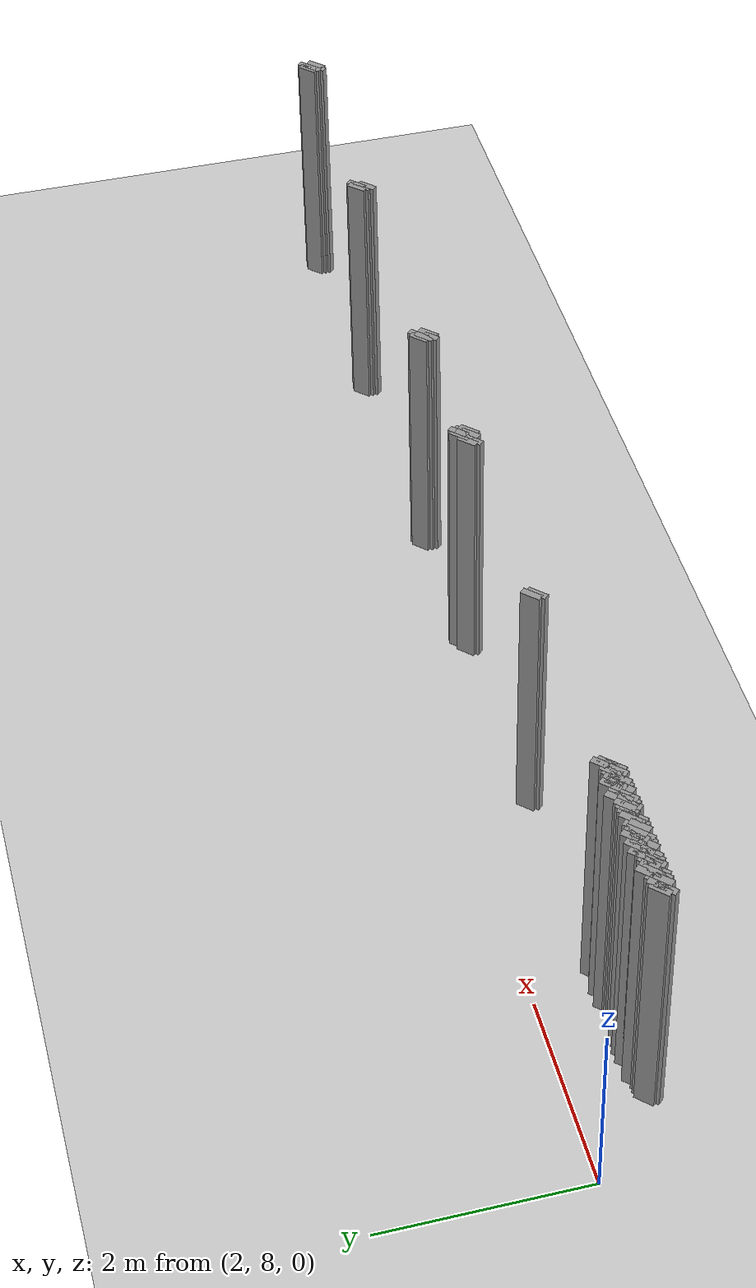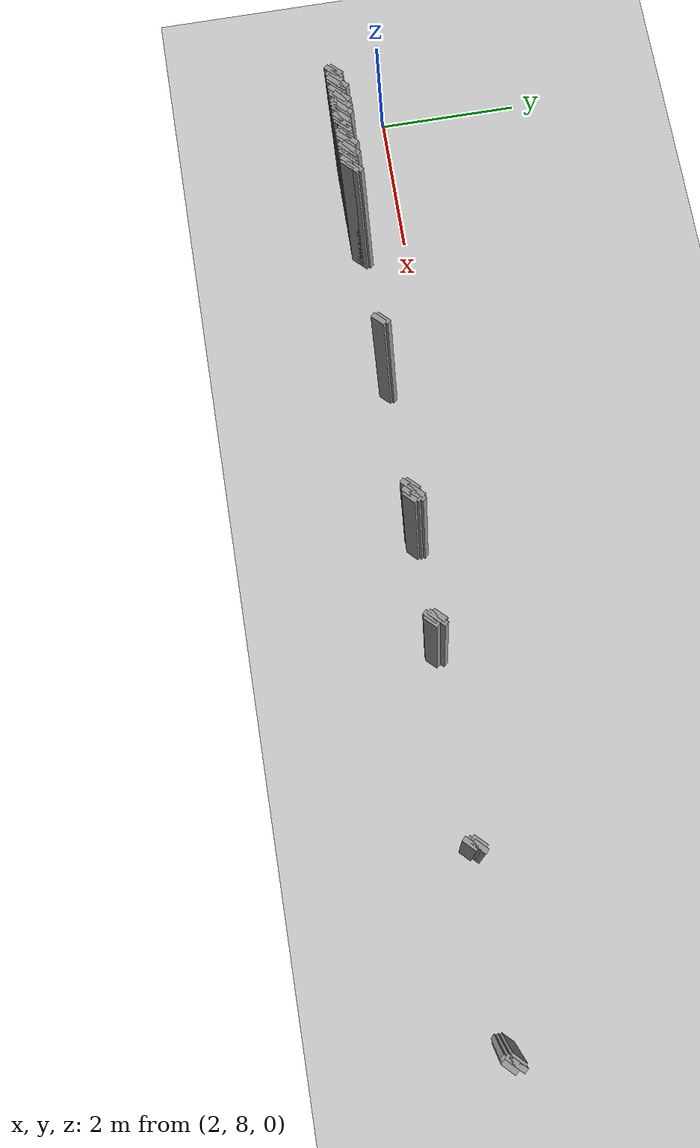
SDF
<sdf version="1.5">
 <world name="default">
  <include><uri>model://ground_plane</uri></include>
  <include><uri>model://sun</uri></include>
  <model name="grey_wall_1478">
   <static>1</static>
   <link name="link">
    <pose>8.65 7.45  1.4 0 0 -0.785398163397</pose>
    <collision name="collision"><geometry><box><size>0.0707106781187 .2  2.8</size></box></geometry></collision>
    <visual name="visual">
     <cast_shadows>0</cast_shadows>
     <geometry><box><size>0.0707106781187 .2  2.8</size></box></geometry>
     <material>
      <script>
       <uri>model://grey_wall/materials/scripts</uri>
       <uri>model://grey_wall/materials/textures</uri>
       <name>vrc/grey_wall</name>
      </script>
     </material>
    </visual>
   </link>
  </model>
  <model name="grey_wall_1479">
   <static>1</static>
   <link name="link">
    <pose>8.7 7.45  1.4 0 0 -0.785398163397</pose>
    <collision name="collision"><geometry><box><size>0.0707106781187 .2  2.8</size></box></geometry></collision>
    <visual name="visual">
     <cast_shadows>0</cast_shadows>
     <geometry><box><size>0.0707106781187 .2  2.8</size></box></geometry>
     <material>
      <script>
       <uri>model://grey_wall/materials/scripts</uri>
       <uri>model://grey_wall/materials/textures</uri>
       <name>vrc/grey_wall</name>
      </script>
     </material>
    </visual>
   </link>
  </model>
  <model name="grey_wall_1480">
   <static>1</static>
   <link name="link">
    <pose>10.2 7.45  1.4 0 0 -0.785398163397</pose>
    <collision name="collision"><geometry><box><size>0.0707106781187 .2  2.8</size></box></geometry></collision>
    <visual name="visual">
     <cast_shadows>0</cast_shadows>
     <geometry><box><size>0.0707106781187 .2  2.8</size></box></geometry>
     <material>
      <script>
       <uri>model://grey_wall/materials/scripts</uri>
       <uri>model://grey_wall/materials/textures</uri>
       <name>vrc/grey_wall</name>
      </script>
     </material>
    </visual>
   </link>
  </model>
  <model name="grey_wall_1481">
   <static>1</static>
   <link name="link">
    <pose>10.25 7.45  1.4 0 0 -0.785398163397</pose>
    <collision name="collision"><geometry><box><size>0.0707106781187 .2  2.8</size></box></geometry></collision>
    <visual name="visual">
     <cast_shadows>0</cast_shadows>
     <geometry><box><size>0.0707106781187 .2  2.8</size></box></geometry>
     <material>
      <script>
       <uri>model://grey_wall/materials/scripts</uri>
       <uri>model://grey_wall/materials/textures</uri>
       <name>vrc/grey_wall</name>
      </script>
     </material>
    </visual>
   </link>
  </model>
  <model name="grey_wall_1482">
   <static>1</static>
   <link name="link">
    <pose>12.85 7.45  1.4 0 0 -0.785398163397</pose>
    <collision name="collision"><geometry><box><size>0.0707106781187 .2  2.8</size></box></geometry></collision>
    <visual name="visual">
     <cast_shadows>0</cast_shadows>
     <geometry><box><size>0.0707106781187 .2  2.8</size></box></geometry>
     <material>
      <script>
       <uri>model://grey_wall/materials/scripts</uri>
       <uri>model://grey_wall/materials/textures</uri>
       <name>vrc/grey_wall</name>
      </script>
     </material>
    </visual>
   </link>
  </model>
  <model name="grey_wall_1483">
   <static>1</static>
   <link name="link">
    <pose>12.9 7.45  1.4 0 0 -0.785398163397</pose>
    <collision name="collision"><geometry><box><size>0.0707106781187 .2  2.8</size></box></geometry></collision>
    <visual name="visual">
     <cast_shadows>0</cast_shadows>
     <geometry><box><size>0.0707106781187 .2  2.8</size></box></geometry>
     <material>
      <script>
       <uri>model://grey_wall/materials/scripts</uri>
       <uri>model://grey_wall/materials/textures</uri>
       <name>vrc/grey_wall</name>
      </script>
     </material>
    </visual>
   </link>
  </model>
  <model name="grey_wall_1484">
   <static>1</static>
   <link name="link">
    <pose>15.2 7.45  1.4 0 0 -0.785398163397</pose>
    <collision name="collision"><geometry><box><size>0.0707106781187 .2  2.8</size></box></geometry></collision>
    <visual name="visual">
     <cast_shadows>0</cast_shadows>
     <geometry><box><size>0.0707106781187 .2  2.8</size></box></geometry>
     <material>
      <script>
       <uri>model://grey_wall/materials/scripts</uri>
       <uri>model://grey_wall/materials/textures</uri>
       <name>vrc/grey_wall</name>
      </script>
     </material>
    </visual>
   </link>
  </model>
  <model name="grey_wall_1485">
   <static>1</static>
   <link name="link">
    <pose>15.25 7.45  1.4 0 0 -0.785398163397</pose>
    <collision name="collision"><geometry><box><size>0.0707106781187 .2  2.8</size></box></geometry></collision>
    <visual name="visual">
     <cast_shadows>0</cast_shadows>
     <geometry><box><size>0.0707106781187 .2  2.8</size></box></geometry>
     <material>
      <script>
       <uri>model://grey_wall/materials/scripts</uri>
       <uri>model://grey_wall/materials/textures</uri>
       <name>vrc/grey_wall</name>
      </script>
     </material>
    </visual>
   </link>
  </model>
  <model name="grey_wall_1486">
   <static>1</static>
   <link name="link">
    <pose>2.95 7.4  1.4 0 0 -0.785398163397</pose>
    <collision name="collision"><geometry><box><size>0.0707106781187 .2  2.8</size></box></geometry></collision>
    <visual name="visual">
     <cast_shadows>0</cast_shadows>
     <geometry><box><size>0.0707106781187 .2  2.8</size></box></geometry>
     <material>
      <script>
       <uri>model://grey_wall/materials/scripts</uri>
       <uri>model://grey_wall/materials/textures</uri>
       <name>vrc/grey_wall</name>
      </script>
     </material>
    </visual>
   </link>
  </model>
  <model name="grey_wall_1487">
   <static>1</static>
   <link name="link">
    <pose>3.15 7.4  1.4 0 0 -0.785398163397</pose>
    <collision name="collision"><geometry><box><size>0.0707106781187 .2  2.8</size></box></geometry></collision>
    <visual name="visual">
     <cast_shadows>0</cast_shadows>
     <geometry><box><size>0.0707106781187 .2  2.8</size></box></geometry>
     <material>
      <script>
       <uri>model://grey_wall/materials/scripts</uri>
       <uri>model://grey_wall/materials/textures</uri>
       <name>vrc/grey_wall</name>
      </script>
     </material>
    </visual>
   </link>
  </model>
  <model name="grey_wall_1488">
   <static>1</static>
   <link name="link">
    <pose>3.25 7.4  1.4 0 0 -0.785398163397</pose>
    <collision name="collision"><geometry><box><size>0.0707106781187 .2  2.8</size></box></geometry></collision>
    <visual name="visual">
     <cast_shadows>0</cast_shadows>
     <geometry><box><size>0.0707106781187 .2  2.8</size></box></geometry>
     <material>
      <script>
       <uri>model://grey_wall/materials/scripts</uri>
       <uri>model://grey_wall/materials/textures</uri>
       <name>vrc/grey_wall</name>
      </script>
     </material>
    </visual>
   </link>
  </model>
  <model name="grey_wall_1489">
   <static>1</static>
   <link name="link">
    <pose>3.35 7.4  1.4 0 0 -0.785398163397</pose>
    <collision name="collision"><geometry><box><size>0.0707106781187 .2  2.8</size></box></geometry></collision>
    <visual name="visual">
     <cast_shadows>0</cast_shadows>
     <geometry><box><size>0.0707106781187 .2  2.8</size></box></geometry>
     <material>
      <script>
       <uri>model://grey_wall/materials/scripts</uri>
       <uri>model://grey_wall/materials/textures</uri>
       <name>vrc/grey_wall</name>
      </script>
     </material>
    </visual>
   </link>
  </model>
  <model name="grey_wall_1490">
   <static>1</static>
   <link name="link">
    <pose>3.8 7.4  1.4 0 0 -0.785398163397</pose>
    <collision name="collision"><geometry><box><size>0.0707106781187 .2  2.8</size></box></geometry></collision>
    <visual name="visual">
     <cast_shadows>0</cast_shadows>
     <geometry><box><size>0.0707106781187 .2  2.8</size></box></geometry>
     <material>
      <script>
       <uri>model://grey_wall/materials/scripts</uri>
       <uri>model://grey_wall/materials/textures</uri>
       <name>vrc/grey_wall</name>
      </script>
     </material>
    </visual>
   </link>
  </model>
  <model name="grey_wall_1491">
   <static>1</static>
   <link name="link">
    <pose>3.95 7.4  1.4 0 0 -0.785398163397</pose>
    <collision name="collision"><geometry><box><size>0.0707106781187 .2  2.8</size></box></geometry></collision>
    <visual name="visual">
     <cast_shadows>0</cast_shadows>
     <geometry><box><size>0.0707106781187 .2  2.8</size></box></geometry>
     <material>
      <script>
       <uri>model://grey_wall/materials/scripts</uri>
       <uri>model://grey_wall/materials/textures</uri>
       <name>vrc/grey_wall</name>
      </script>
     </material>
    </visual>
   </link>
  </model>
  <model name="grey_wall_1492">
   <static>1</static>
   <link name="link">
    <pose>4.2 7.4  1.4 0 0 -0.785398163397</pose>
    <collision name="collision"><geometry><box><size>0.0707106781187 .2  2.8</size></box></geometry></collision>
    <visual name="visual">
     <cast_shadows>0</cast_shadows>
     <geometry><box><size>0.0707106781187 .2  2.8</size></box></geometry>
     <material>
      <script>
       <uri>model://grey_wall/materials/scripts</uri>
       <uri>model://grey_wall/materials/textures</uri>
       <name>vrc/grey_wall</name>
      </script>
     </material>
    </visual>
   </link>
  </model>
  <model name="grey_wall_1493">
   <static>1</static>
   <link name="link">
    <pose>6.35 7.4  1.4 0 0 -0.785398163397</pose>
    <collision name="collision"><geometry><box><size>0.0707106781187 .2  2.8</size></box></geometry></collision>
    <visual name="visual">
     <cast_shadows>0</cast_shadows>
     <geometry><box><size>0.0707106781187 .2  2.8</size></box></geometry>
     <material>
      <script>
       <uri>model://grey_wall/materials/scripts</uri>
       <uri>model://grey_wall/materials/textures</uri>
       <name>vrc/grey_wall</name>
      </script>
     </material>
    </visual>
   </link>
  </model>
  <model name="grey_wall_1494">
   <static>1</static>
   <link name="link">
    <pose>8.55 7.4  1.4 0 0 -0.785398163397</pose>
    <collision name="collision"><geometry><box><size>0.0707106781187 .2  2.8</size></box></geometry></collision>
    <visual name="visual">
     <cast_shadows>0</cast_shadows>
     <geometry><box><size>0.0707106781187 .2  2.8</size></box></geometry>
     <material>
      <script>
       <uri>model://grey_wall/materials/scripts</uri>
       <uri>model://grey_wall/materials/textures</uri>
       <name>vrc/grey_wall</name>
      </script>
     </material>
    </visual>
   </link>
  </model>
  <model name="grey_wall_1495">
   <static>1</static>
   <link name="link">
    <pose>8.65 7.4  1.4 0 0 -0.785398163397</pose>
    <collision name="collision"><geometry><box><size>0.0707106781187 .2  2.8</size></box></geometry></collision>
    <visual name="visual">
     <cast_shadows>0</cast_shadows>
     <geometry><box><size>0.0707106781187 .2  2.8</size></box></geometry>
     <material>
      <script>
       <uri>model://grey_wall/materials/scripts</uri>
       <uri>model://grey_wall/materials/textures</uri>
       <name>vrc/grey_wall</name>
      </script>
     </material>
    </visual>
   </link>
  </model>
  <model name="grey_wall_1496">
   <static>1</static>
   <link name="link">
    <pose>8.7 7.4  1.4 0 0 -0.785398163397</pose>
    <collision name="collision"><geometry><box><size>0.0707106781187 .2  2.8</size></box></geometry></collision>
    <visual name="visual">
     <cast_shadows>0</cast_shadows>
     <geometry><box><size>0.0707106781187 .2  2.8</size></box></geometry>
     <material>
      <script>
       <uri>model://grey_wall/materials/scripts</uri>
       <uri>model://grey_wall/materials/textures</uri>
       <name>vrc/grey_wall</name>
      </script>
     </material>
    </visual>
   </link>
  </model>
  <model name="grey_wall_1497">
   <static>1</static>
   <link name="link">
    <pose>10.2 7.4  1.4 0 0 -0.785398163397</pose>
    <collision name="collision"><geometry><box><size>0.0707106781187 .2  2.8</size></box></geometry></collision>
    <visual name="visual">
     <cast_shadows>0</cast_shadows>
     <geometry><box><size>0.0707106781187 .2  2.8</size></box></geometry>
     <material>
      <script>
       <uri>model://grey_wall/materials/scripts</uri>
       <uri>model://grey_wall/materials/textures</uri>
       <name>vrc/grey_wall</name>
      </script>
     </material>
    </visual>
   </link>
  </model>
  <model name="grey_wall_1498">
   <static>1</static>
   <link name="link">
    <pose>12.85 7.4  1.4 0 0 -0.785398163397</pose>
    <collision name="collision"><geometry><box><size>0.0707106781187 .2  2.8</size></box></geometry></collision>
    <visual name="visual">
     <cast_shadows>0</cast_shadows>
     <geometry><box><size>0.0707106781187 .2  2.8</size></box></geometry>
     <material>
      <script>
       <uri>model://grey_wall/materials/scripts</uri>
       <uri>model://grey_wall/materials/textures</uri>
       <name>vrc/grey_wall</name>
      </script>
     </material>
    </visual>
   </link>
  </model>
  <model name="grey_wall_1499">
   <static>1</static>
   <link name="link">
    <pose>15.2 7.4  1.4 0 0 -0.785398163397</pose>
    <collision name="collision"><geometry><box><size>0.0707106781187 .2  2.8</size></box></geometry></collision>
    <visual name="visual">
     <cast_shadows>0</cast_shadows>
     <geometry><box><size>0.0707106781187 .2  2.8</size></box></geometry>
     <material>
      <script>
       <uri>model://grey_wall/materials/scripts</uri>
       <uri>model://grey_wall/materials/textures</uri>
       <name>vrc/grey_wall</name>
      </script>
     </material>
    </visual>
   </link>
  </model>
  <model name="grey_wall_1500">
   <static>1</static>
   <link name="link">
    <pose>2.75 7.35  1.4 0 0 -0.785398163397</pose>
    <collision name="collision"><geometry><box><size>0.0707106781187 .2  2.8</size></box></geometry></collision>
    <visual name="visual">
     <cast_shadows>0</cast_shadows>
     <geometry><box><size>0.0707106781187 .2  2.8</size></box></geometry>
     <material>
      <script>
       <uri>model://grey_wall/materials/scripts</uri>
       <uri>model://grey_wall/materials/textures</uri>
       <name>vrc/grey_wall</name>
      </script>
     </material>
    </visual>
   </link>
  </model>
  <model name="grey_wall_1501">
   <static>1</static>
   <link name="link">
    <pose>2.8 7.35  1.4 0 0 -0.785398163397</pose>
    <collision name="collision"><geometry><box><size>0.0707106781187 .2  2.8</size></box></geometry></collision>
    <visual name="visual">
     <cast_shadows>0</cast_shadows>
     <geometry><box><size>0.0707106781187 .2  2.8</size></box></geometry>
     <material>
      <script>
       <uri>model://grey_wall/materials/scripts</uri>
       <uri>model://grey_wall/materials/textures</uri>
       <name>vrc/grey_wall</name>
      </script>
     </material>
    </visual>
   </link>
  </model>
  <model name="grey_wall_1502">
   <static>1</static>
   <link name="link">
    <pose>2.85 7.35  1.4 0 0 -0.785398163397</pose>
    <collision name="collision"><geometry><box><size>0.0707106781187 .2  2.8</size></box></geometry></collision>
    <visual name="visual">
     <cast_shadows>0</cast_shadows>
     <geometry><box><size>0.0707106781187 .2  2.8</size></box></geometry>
     <material>
      <script>
       <uri>model://grey_wall/materials/scripts</uri>
       <uri>model://grey_wall/materials/textures</uri>
       <name>vrc/grey_wall</name>
      </script>
     </material>
    </visual>
   </link>
  </model>
  <model name="grey_wall_1503">
   <static>1</static>
   <link name="link">
    <pose>2.95 7.35  1.4 0 0 -0.785398163397</pose>
    <collision name="collision"><geometry><box><size>0.0707106781187 .2  2.8</size></box></geometry></collision>
    <visual name="visual">
     <cast_shadows>0</cast_shadows>
     <geometry><box><size>0.0707106781187 .2  2.8</size></box></geometry>
     <material>
      <script>
       <uri>model://grey_wall/materials/scripts</uri>
       <uri>model://grey_wall/materials/textures</uri>
       <name>vrc/grey_wall</name>
      </script>
     </material>
    </visual>
   </link>
  </model>
  <model name="grey_wall_1504">
   <static>1</static>
   <link name="link">
    <pose>3.0 7.35  1.4 0 0 -0.785398163397</pose>
    <collision name="collision"><geometry><box><size>0.0707106781187 .2  2.8</size></box></geometry></collision>
    <visual name="visual">
     <cast_shadows>0</cast_shadows>
     <geometry><box><size>0.0707106781187 .2  2.8</size></box></geometry>
     <material>
      <script>
       <uri>model://grey_wall/materials/scripts</uri>
       <uri>model://grey_wall/materials/textures</uri>
       <name>vrc/grey_wall</name>
      </script>
     </material>
    </visual>
   </link>
  </model>
  <model name="grey_wall_1505">
   <static>1</static>
   <link name="link">
    <pose>3.05 7.35  1.4 0 0 -0.785398163397</pose>
    <collision name="collision"><geometry><box><size>0.0707106781187 .2  2.8</size></box></geometry></collision>
    <visual name="visual">
     <cast_shadows>0</cast_shadows>
     <geometry><box><size>0.0707106781187 .2  2.8</size></box></geometry>
     <material>
      <script>
       <uri>model://grey_wall/materials/scripts</uri>
       <uri>model://grey_wall/materials/textures</uri>
       <name>vrc/grey_wall</name>
      </script>
     </material>
    </visual>
   </link>
  </model>
  <model name="grey_wall_1506">
   <static>1</static>
   <link name="link">
    <pose>3.1 7.35  1.4 0 0 -0.785398163397</pose>
    <collision name="collision"><geometry><box><size>0.0707106781187 .2  2.8</size></box></geometry></collision>
    <visual name="visual">
     <cast_shadows>0</cast_shadows>
     <geometry><box><size>0.0707106781187 .2  2.8</size></box></geometry>
     <material>
      <script>
       <uri>model://grey_wall/materials/scripts</uri>
       <uri>model://grey_wall/materials/textures</uri>
       <name>vrc/grey_wall</name>
      </script>
     </material>
    </visual>
   </link>
  </model>
  <model name="grey_wall_1507">
   <static>1</static>
   <link name="link">
    <pose>3.15 7.35  1.4 0 0 -0.785398163397</pose>
    <collision name="collision"><geometry><box><size>0.0707106781187 .2  2.8</size></box></geometry></collision>
    <visual name="visual">
     <cast_shadows>0</cast_shadows>
     <geometry><box><size>0.0707106781187 .2  2.8</size></box></geometry>
     <material>
      <script>
       <uri>model://grey_wall/materials/scripts</uri>
       <uri>model://grey_wall/materials/textures</uri>
       <name>vrc/grey_wall</name>
      </script>
     </material>
    </visual>
   </link>
  </model>
  <model name="grey_wall_1508">
   <static>1</static>
   <link name="link">
    <pose>3.2 7.35  1.4 0 0 -0.785398163397</pose>
    <collision name="collision"><geometry><box><size>0.0707106781187 .2  2.8</size></box></geometry></collision>
    <visual name="visual">
     <cast_shadows>0</cast_shadows>
     <geometry><box><size>0.0707106781187 .2  2.8</size></box></geometry>
     <material>
      <script>
       <uri>model://grey_wall/materials/scripts</uri>
       <uri>model://grey_wall/materials/textures</uri>
       <name>vrc/grey_wall</name>
      </script>
     </material>
    </visual>
   </link>
  </model>
  <model name="grey_wall_1509">
   <static>1</static>
   <link name="link">
    <pose>3.25 7.35  1.4 0 0 -0.785398163397</pose>
    <collision name="collision"><geometry><box><size>0.0707106781187 .2  2.8</size></box></geometry></collision>
    <visual name="visual">
     <cast_shadows>0</cast_shadows>
     <geometry><box><size>0.0707106781187 .2  2.8</size></box></geometry>
     <material>
      <script>
       <uri>model://grey_wall/materials/scripts</uri>
       <uri>model://grey_wall/materials/textures</uri>
       <name>vrc/grey_wall</name>
      </script>
     </material>
    </visual>
   </link>
  </model>
  <model name="grey_wall_1510">
   <static>1</static>
   <link name="link">
    <pose>3.3 7.35  1.4 0 0 -0.785398163397</pose>
    <collision name="collision"><geometry><box><size>0.0707106781187 .2  2.8</size></box></geometry></collision>
    <visual name="visual">
     <cast_shadows>0</cast_shadows>
     <geometry><box><size>0.0707106781187 .2  2.8</size></box></geometry>
     <material>
      <script>
       <uri>model://grey_wall/materials/scripts</uri>
       <uri>model://grey_wall/materials/textures</uri>
       <name>vrc/grey_wall</name>
      </script>
     </material>
    </visual>
   </link>
  </model>
  <model name="grey_wall_1511">
   <static>1</static>
   <link name="link">
    <pose>3.35 7.35  1.4 0 0 -0.785398163397</pose>
    <collision name="collision"><geometry><box><size>0.0707106781187 .2  2.8</size></box></geometry></collision>
    <visual name="visual">
     <cast_shadows>0</cast_shadows>
     <geometry><box><size>0.0707106781187 .2  2.8</size></box></geometry>
     <material>
      <script>
       <uri>model://grey_wall/materials/scripts</uri>
       <uri>model://grey_wall/materials/textures</uri>
       <name>vrc/grey_wall</name>
      </script>
     </material>
    </visual>
   </link>
  </model>
  <model name="grey_wall_1512">
   <static>1</static>
   <link name="link">
    <pose>3.4 7.35  1.4 0 0 -0.785398163397</pose>
    <collision name="collision"><geometry><box><size>0.0707106781187 .2  2.8</size></box></geometry></collision>
    <visual name="visual">
     <cast_shadows>0</cast_shadows>
     <geometry><box><size>0.0707106781187 .2  2.8</size></box></geometry>
     <material>
      <script>
       <uri>model://grey_wall/materials/scripts</uri>
       <uri>model://grey_wall/materials/textures</uri>
       <name>vrc/grey_wall</name>
      </script>
     </material>
    </visual>
   </link>
  </model>
  <model name="grey_wall_1513">
   <static>1</static>
   <link name="link">
    <pose>3.45 7.35  1.4 0 0 -0.785398163397</pose>
    <collision name="collision"><geometry><box><size>0.0707106781187 .2  2.8</size></box></geometry></collision>
    <visual name="visual">
     <cast_shadows>0</cast_shadows>
     <geometry><box><size>0.0707106781187 .2  2.8</size></box></geometry>
     <material>
      <script>
       <uri>model://grey_wall/materials/scripts</uri>
       <uri>model://grey_wall/materials/textures</uri>
       <name>vrc/grey_wall</name>
      </script>
     </material>
    </visual>
   </link>
  </model>
  <model name="grey_wall_1514">
   <static>1</static>
   <link name="link">
    <pose>3.55 7.35  1.4 0 0 -0.785398163397</pose>
    <collision name="collision"><geometry><box><size>0.0707106781187 .2  2.8</size></box></geometry></collision>
    <visual name="visual">
     <cast_shadows>0</cast_shadows>
     <geometry><box><size>0.0707106781187 .2  2.8</size></box></geometry>
     <material>
      <script>
       <uri>model://grey_wall/materials/scripts</uri>
       <uri>model://grey_wall/materials/textures</uri>
       <name>vrc/grey_wall</name>
      </script>
     </material>
    </visual>
   </link>
  </model>
  <model name="grey_wall_1515">
   <static>1</static>
   <link name="link">
    <pose>3.6 7.35  1.4 0 0 -0.785398163397</pose>
    <collision name="collision"><geometry><box><size>0.0707106781187 .2  2.8</size></box></geometry></collision>
    <visual name="visual">
     <cast_shadows>0</cast_shadows>
     <geometry><box><size>0.0707106781187 .2  2.8</size></box></geometry>
     <material>
      <script>
       <uri>model://grey_wall/materials/scripts</uri>
       <uri>model://grey_wall/materials/textures</uri>
       <name>vrc/grey_wall</name>
      </script>
     </material>
    </visual>
   </link>
  </model>
  <model name="grey_wall_1516">
   <static>1</static>
   <link name="link">
    <pose>3.65 7.35  1.4 0 0 -0.785398163397</pose>
    <collision name="collision"><geometry><box><size>0.0707106781187 .2  2.8</size></box></geometry></collision>
    <visual name="visual">
     <cast_shadows>0</cast_shadows>
     <geometry><box><size>0.0707106781187 .2  2.8</size></box></geometry>
     <material>
      <script>
       <uri>model://grey_wall/materials/scripts</uri>
       <uri>model://grey_wall/materials/textures</uri>
       <name>vrc/grey_wall</name>
      </script>
     </material>
    </visual>
   </link>
  </model>
  <model name="grey_wall_1517">
   <static>1</static>
   <link name="link">
    <pose>3.7 7.35  1.4 0 0 -0.785398163397</pose>
    <collision name="collision"><geometry><box><size>0.0707106781187 .2  2.8</size></box></geometry></collision>
    <visual name="visual">
     <cast_shadows>0</cast_shadows>
     <geometry><box><size>0.0707106781187 .2  2.8</size></box></geometry>
     <material>
      <script>
       <uri>model://grey_wall/materials/scripts</uri>
       <uri>model://grey_wall/materials/textures</uri>
       <name>vrc/grey_wall</name>
      </script>
     </material>
    </visual>
   </link>
  </model>
  <model name="grey_wall_1518">
   <static>1</static>
   <link name="link">
    <pose>3.8 7.35  1.4 0 0 -0.785398163397</pose>
    <collision name="collision"><geometry><box><size>0.0707106781187 .2  2.8</size></box></geometry></collision>
    <visual name="visual">
     <cast_shadows>0</cast_shadows>
     <geometry><box><size>0.0707106781187 .2  2.8</size></box></geometry>
     <material>
      <script>
       <uri>model://grey_wall/materials/scripts</uri>
       <uri>model://grey_wall/materials/textures</uri>
       <name>vrc/grey_wall</name>
      </script>
     </material>
    </visual>
   </link>
  </model>
  <model name="grey_wall_1519">
   <static>1</static>
   <link name="link">
    <pose>3.85 7.35  1.4 0 0 -0.785398163397</pose>
    <collision name="collision"><geometry><box><size>0.0707106781187 .2  2.8</size></box></geometry></collision>
    <visual name="visual">
     <cast_shadows>0</cast_shadows>
     <geometry><box><size>0.0707106781187 .2  2.8</size></box></geometry>
     <material>
      <script>
       <uri>model://grey_wall/materials/scripts</uri>
       <uri>model://grey_wall/materials/textures</uri>
       <name>vrc/grey_wall</name>
      </script>
     </material>
    </visual>
   </link>
  </model>
  <model name="grey_wall_1520">
   <static>1</static>
   <link name="link">
    <pose>3.9 7.35  1.4 0 0 -0.785398163397</pose>
    <collision name="collision"><geometry><box><size>0.0707106781187 .2  2.8</size></box></geometry></collision>
    <visual name="visual">
     <cast_shadows>0</cast_shadows>
     <geometry><box><size>0.0707106781187 .2  2.8</size></box></geometry>
     <material>
      <script>
       <uri>model://grey_wall/materials/scripts</uri>
       <uri>model://grey_wall/materials/textures</uri>
       <name>vrc/grey_wall</name>
      </script>
     </material>
    </visual>
   </link>
  </model>
  <model name="grey_wall_1521">
   <static>1</static>
   <link name="link">
    <pose>3.95 7.35  1.4 0 0 -0.785398163397</pose>
    <collision name="collision"><geometry><box><size>0.0707106781187 .2  2.8</size></box></geometry></collision>
    <visual name="visual">
     <cast_shadows>0</cast_shadows>
     <geometry><box><size>0.0707106781187 .2  2.8</size></box></geometry>
     <material>
      <script>
       <uri>model://grey_wall/materials/scripts</uri>
       <uri>model://grey_wall/materials/textures</uri>
       <name>vrc/grey_wall</name>
      </script>
     </material>
    </visual>
   </link>
  </model>
  <model name="grey_wall_1522">
   <static>1</static>
   <link name="link">
    <pose>4.0 7.35  1.4 0 0 -0.785398163397</pose>
    <collision name="collision"><geometry><box><size>0.0707106781187 .2  2.8</size></box></geometry></collision>
    <visual name="visual">
     <cast_shadows>0</cast_shadows>
     <geometry><box><size>0.0707106781187 .2  2.8</size></box></geometry>
     <material>
      <script>
       <uri>model://grey_wall/materials/scripts</uri>
       <uri>model://grey_wall/materials/textures</uri>
       <name>vrc/grey_wall</name>
      </script>
     </material>
    </visual>
   </link>
  </model>
  <model name="grey_wall_1523">
   <static>1</static>
   <link name="link">
    <pose>4.05 7.35  1.4 0 0 -0.785398163397</pose>
    <collision name="collision"><geometry><box><size>0.0707106781187 .2  2.8</size></box></geometry></collision>
    <visual name="visual">
     <cast_shadows>0</cast_shadows>
     <geometry><box><size>0.0707106781187 .2  2.8</size></box></geometry>
     <material>
      <script>
       <uri>model://grey_wall/materials/scripts</uri>
       <uri>model://grey_wall/materials/textures</uri>
       <name>vrc/grey_wall</name>
      </script>
     </material>
    </visual>
   </link>
  </model>
  <model name="grey_wall_1524">
   <static>1</static>
   <link name="link">
    <pose>4.1 7.35  1.4 0 0 -0.785398163397</pose>
    <collision name="collision"><geometry><box><size>0.0707106781187 .2  2.8</size></box></geometry></collision>
    <visual name="visual">
     <cast_shadows>0</cast_shadows>
     <geometry><box><size>0.0707106781187 .2  2.8</size></box></geometry>
     <material>
      <script>
       <uri>model://grey_wall/materials/scripts</uri>
       <uri>model://grey_wall/materials/textures</uri>
       <name>vrc/grey_wall</name>
      </script>
     </material>
    </visual>
   </link>
  </model>
  <model name="grey_wall_1525">
   <static>1</static>
   <link name="link">
    <pose>4.2 7.35  1.4 0 0 -0.785398163397</pose>
    <collision name="collision"><geometry><box><size>0.0707106781187 .2  2.8</size></box></geometry></collision>
    <visual name="visual">
     <cast_shadows>0</cast_shadows>
     <geometry><box><size>0.0707106781187 .2  2.8</size></box></geometry>
     <material>
      <script>
       <uri>model://grey_wall/materials/scripts</uri>
       <uri>model://grey_wall/materials/textures</uri>
       <name>vrc/grey_wall</name>
      </script>
     </material>
    </visual>
   </link>
  </model>
  <model name="grey_wall_1526">
   <static>1</static>
   <link name="link">
    <pose>6.35 7.35  1.4 0 0 -0.785398163397</pose>
    <collision name="collision"><geometry><box><size>0.0707106781187 .2  2.8</size></box></geometry></collision>
    <visual name="visual">
     <cast_shadows>0</cast_shadows>
     <geometry><box><size>0.0707106781187 .2  2.8</size></box></geometry>
     <material>
      <script>
       <uri>model://grey_wall/materials/scripts</uri>
       <uri>model://grey_wall/materials/textures</uri>
       <name>vrc/grey_wall</name>
      </script>
     </material>
    </visual>
   </link>
  </model>
  <model name="grey_wall_1527">
   <static>1</static>
   <link name="link">
    <pose>8.55 7.35  1.4 0 0 -0.785398163397</pose>
    <collision name="collision"><geometry><box><size>0.0707106781187 .2  2.8</size></box></geometry></collision>
    <visual name="visual">
     <cast_shadows>0</cast_shadows>
     <geometry><box><size>0.0707106781187 .2  2.8</size></box></geometry>
     <material>
      <script>
       <uri>model://grey_wall/materials/scripts</uri>
       <uri>model://grey_wall/materials/textures</uri>
       <name>vrc/grey_wall</name>
      </script>
     </material>
    </visual>
   </link>
  </model>
  <model name="grey_wall_1528">
   <static>1</static>
   <link name="link">
    <pose>8.65 7.35  1.4 0 0 -0.785398163397</pose>
    <collision name="collision"><geometry><box><size>0.0707106781187 .2  2.8</size></box></geometry></collision>
    <visual name="visual">
     <cast_shadows>0</cast_shadows>
     <geometry><box><size>0.0707106781187 .2  2.8</size></box></geometry>
     <material>
      <script>
       <uri>model://grey_wall/materials/scripts</uri>
       <uri>model://grey_wall/materials/textures</uri>
       <name>vrc/grey_wall</name>
      </script>
     </material>
    </visual>
   </link>
  </model>
  <model name="grey_wall_1529">
   <static>1</static>
   <link name="link">
    <pose>8.7 7.35  1.4 0 0 -0.785398163397</pose>
    <collision name="collision"><geometry><box><size>0.0707106781187 .2  2.8</size></box></geometry></collision>
    <visual name="visual">
     <cast_shadows>0</cast_shadows>
     <geometry><box><size>0.0707106781187 .2  2.8</size></box></geometry>
     <material>
      <script>
       <uri>model://grey_wall/materials/scripts</uri>
       <uri>model://grey_wall/materials/textures</uri>
       <name>vrc/grey_wall</name>
      </script>
     </material>
    </visual>
   </link>
  </model>
  <model name="grey_wall_1530">
   <static>1</static>
   <link name="link">
    <pose>10.2 7.35  1.4 0 0 -0.785398163397</pose>
    <collision name="collision"><geometry><box><size>0.0707106781187 .2  2.8</size></box></geometry></collision>
    <visual name="visual">
     <cast_shadows>0</cast_shadows>
     <geometry><box><size>0.0707106781187 .2  2.8</size></box></geometry>
     <material>
      <script>
       <uri>model://grey_wall/materials/scripts</uri>
       <uri>model://grey_wall/materials/textures</uri>
       <name>vrc/grey_wall</name>
      </script>
     </material>
    </visual>
   </link>
  </model>
  <model name="grey_wall_1531">
   <static>1</static>
   <link name="link">
    <pose>10.25 7.35  1.4 0 0 -0.785398163397</pose>
    <collision name="collision"><geometry><box><size>0.0707106781187 .2  2.8</size></box></geometry></collision>
    <visual name="visual">
     <cast_shadows>0</cast_shadows>
     <geometry><box><size>0.0707106781187 .2  2.8</size></box></geometry>
     <material>
      <script>
       <uri>model://grey_wall/materials/scripts</uri>
       <uri>model://grey_wall/materials/textures</uri>
       <name>vrc/grey_wall</name>
      </script>
     </material>
    </visual>
   </link>
  </model>
  <model name="grey_wall_1532">
   <static>1</static>
   <link name="link">
    <pose>12.85 7.35  1.4 0 0 -0.785398163397</pose>
    <collision name="collision"><geometry><box><size>0.0707106781187 .2  2.8</size></box></geometry></collision>
    <visual name="visual">
     <cast_shadows>0</cast_shadows>
     <geometry><box><size>0.0707106781187 .2  2.8</size></box></geometry>
     <material>
      <script>
       <uri>model://grey_wall/materials/scripts</uri>
       <uri>model://grey_wall/materials/textures</uri>
       <name>vrc/grey_wall</name>
      </script>
     </material>
    </visual>
   </link>
  </model>
  <model name="grey_wall_1533">
   <static>1</static>
   <link name="link">
    <pose>15.2 7.35  1.4 0 0 -0.785398163397</pose>
    <collision name="collision"><geometry><box><size>0.0707106781187 .2  2.8</size></box></geometry></collision>
    <visual name="visual">
     <cast_shadows>0</cast_shadows>
     <geometry><box><size>0.0707106781187 .2  2.8</size></box></geometry>
     <material>
      <script>
       <uri>model://grey_wall/materials/scripts</uri>
       <uri>model://grey_wall/materials/textures</uri>
       <name>vrc/grey_wall</name>
      </script>
     </material>
    </visual>
   </link>
  </model>
  <model name="grey_wall_1534">
   <static>1</static>
   <link name="link">
    <pose>15.25 7.35  1.4 0 0 -0.785398163397</pose>
    <collision name="collision"><geometry><box><size>0.0707106781187 .2  2.8</size></box></geometry></collision>
    <visual name="visual">
     <cast_shadows>0</cast_shadows>
     <geometry><box><size>0.0707106781187 .2  2.8</size></box></geometry>
     <material>
      <script>
       <uri>model://grey_wall/materials/scripts</uri>
       <uri>model://grey_wall/materials/textures</uri>
       <name>vrc/grey_wall</name>
      </script>
     </material>
    </visual>
   </link>
  </model>
  <model name="grey_wall_1535">
   <static>1</static>
   <link name="link">
    <pose>2.75 7.3  1.4 0 0 -0.785398163397</pose>
    <collision name="collision"><geometry><box><size>0.0707106781187 .2  2.8</size></box></geometry></collision>
    <visual name="visual">
     <cast_shadows>0</cast_shadows>
     <geometry><box><size>0.0707106781187 .2  2.8</size></box></geometry>
     <material>
      <script>
       <uri>model://grey_wall/materials/scripts</uri>
       <uri>model://grey_wall/materials/textures</uri>
       <name>vrc/grey_wall</name>
      </script>
     </material>
    </visual>
   </link>
  </model>
  <model name="grey_wall_1536">
   <static>1</static>
   <link name="link">
    <pose>2.85 7.3  1.4 0 0 -0.785398163397</pose>
    <collision name="collision"><geometry><box><size>0.0707106781187 .2  2.8</size></box></geometry></collision>
    <visual name="visual">
     <cast_shadows>0</cast_shadows>
     <geometry><box><size>0.0707106781187 .2  2.8</size></box></geometry>
     <material>
      <script>
       <uri>model://grey_wall/materials/scripts</uri>
       <uri>model://grey_wall/materials/textures</uri>
       <name>vrc/grey_wall</name>
      </script>
     </material>
    </visual>
   </link>
  </model>
  <model name="grey_wall_1537">
   <static>1</static>
   <link name="link">
    <pose>2.9 7.3  1.4 0 0 -0.785398163397</pose>
    <collision name="collision"><geometry><box><size>0.0707106781187 .2  2.8</size></box></geometry></collision>
    <visual name="visual">
     <cast_shadows>0</cast_shadows>
     <geometry><box><size>0.0707106781187 .2  2.8</size></box></geometry>
     <material>
      <script>
       <uri>model://grey_wall/materials/scripts</uri>
       <uri>model://grey_wall/materials/textures</uri>
       <name>vrc/grey_wall</name>
      </script>
     </material>
    </visual>
   </link>
  </model>
  <model name="grey_wall_1538">
   <static>1</static>
   <link name="link">
    <pose>2.95 7.3  1.4 0 0 -0.785398163397</pose>
    <collision name="collision"><geometry><box><size>0.0707106781187 .2  2.8</size></box></geometry></collision>
    <visual name="visual">
     <cast_shadows>0</cast_shadows>
     <geometry><box><size>0.0707106781187 .2  2.8</size></box></geometry>
     <material>
      <script>
       <uri>model://grey_wall/materials/scripts</uri>
       <uri>model://grey_wall/materials/textures</uri>
       <name>vrc/grey_wall</name>
      </script>
     </material>
    </visual>
   </link>
  </model>
  <model name="grey_wall_1539">
   <static>1</static>
   <link name="link">
    <pose>3.05 7.3  1.4 0 0 -0.785398163397</pose>
    <collision name="collision"><geometry><box><size>0.0707106781187 .2  2.8</size></box></geometry></collision>
    <visual name="visual">
     <cast_shadows>0</cast_shadows>
     <geometry><box><size>0.0707106781187 .2  2.8</size></box></geometry>
     <material>
      <script>
       <uri>model://grey_wall/materials/scripts</uri>
       <uri>model://grey_wall/materials/textures</uri>
       <name>vrc/grey_wall</name>
      </script>
     </material>
    </visual>
   </link>
  </model>
  <model name="grey_wall_1540">
   <static>1</static>
   <link name="link">
    <pose>3.1 7.3  1.4 0 0 -0.785398163397</pose>
    <collision name="collision"><geometry><box><size>0.0707106781187 .2  2.8</size></box></geometry></collision>
    <visual name="visual">
     <cast_shadows>0</cast_shadows>
     <geometry><box><size>0.0707106781187 .2  2.8</size></box></geometry>
     <material>
      <script>
       <uri>model://grey_wall/materials/scripts</uri>
       <uri>model://grey_wall/materials/textures</uri>
       <name>vrc/grey_wall</name>
      </script>
     </material>
    </visual>
   </link>
  </model>
  <model name="grey_wall_1541">
   <static>1</static>
   <link name="link">
    <pose>3.15 7.3  1.4 0 0 -0.785398163397</pose>
    <collision name="collision"><geometry><box><size>0.0707106781187 .2  2.8</size></box></geometry></collision>
    <visual name="visual">
     <cast_shadows>0</cast_shadows>
     <geometry><box><size>0.0707106781187 .2  2.8</size></box></geometry>
     <material>
      <script>
       <uri>model://grey_wall/materials/scripts</uri>
       <uri>model://grey_wall/materials/textures</uri>
       <name>vrc/grey_wall</name>
      </script>
     </material>
    </visual>
   </link>
  </model>
  <model name="grey_wall_1542">
   <static>1</static>
   <link name="link">
    <pose>3.25 7.3  1.4 0 0 -0.785398163397</pose>
    <collision name="collision"><geometry><box><size>0.0707106781187 .2  2.8</size></box></geometry></collision>
    <visual name="visual">
     <cast_shadows>0</cast_shadows>
     <geometry><box><size>0.0707106781187 .2  2.8</size></box></geometry>
     <material>
      <script>
       <uri>model://grey_wall/materials/scripts</uri>
       <uri>model://grey_wall/materials/textures</uri>
       <name>vrc/grey_wall</name>
      </script>
     </material>
    </visual>
   </link>
  </model>
  <model name="grey_wall_1543">
   <static>1</static>
   <link name="link">
    <pose>3.3 7.3  1.4 0 0 -0.785398163397</pose>
    <collision name="collision"><geometry><box><size>0.0707106781187 .2  2.8</size></box></geometry></collision>
    <visual name="visual">
     <cast_shadows>0</cast_shadows>
     <geometry><box><size>0.0707106781187 .2  2.8</size></box></geometry>
     <material>
      <script>
       <uri>model://grey_wall/materials/scripts</uri>
       <uri>model://grey_wall/materials/textures</uri>
       <name>vrc/grey_wall</name>
      </script>
     </material>
    </visual>
   </link>
  </model>
  <model name="grey_wall_1544">
   <static>1</static>
   <link name="link">
    <pose>3.35 7.3  1.4 0 0 -0.785398163397</pose>
    <collision name="collision"><geometry><box><size>0.0707106781187 .2  2.8</size></box></geometry></collision>
    <visual name="visual">
     <cast_shadows>0</cast_shadows>
     <geometry><box><size>0.0707106781187 .2  2.8</size></box></geometry>
     <material>
      <script>
       <uri>model://grey_wall/materials/scripts</uri>
       <uri>model://grey_wall/materials/textures</uri>
       <name>vrc/grey_wall</name>
      </script>
     </material>
    </visual>
   </link>
  </model>
  <model name="grey_wall_1545">
   <static>1</static>
   <link name="link">
    <pose>3.45 7.3  1.4 0 0 -0.785398163397</pose>
    <collision name="collision"><geometry><box><size>0.0707106781187 .2  2.8</size></box></geometry></collision>
    <visual name="visual">
     <cast_shadows>0</cast_shadows>
     <geometry><box><size>0.0707106781187 .2  2.8</size></box></geometry>
     <material>
      <script>
       <uri>model://grey_wall/materials/scripts</uri>
       <uri>model://grey_wall/materials/textures</uri>
       <name>vrc/grey_wall</name>
      </script>
     </material>
    </visual>
   </link>
  </model>
  <model name="grey_wall_1546">
   <static>1</static>
   <link name="link">
    <pose>3.5 7.3  1.4 0 0 -0.785398163397</pose>
    <collision name="collision"><geometry><box><size>0.0707106781187 .2  2.8</size></box></geometry></collision>
    <visual name="visual">
     <cast_shadows>0</cast_shadows>
     <geometry><box><size>0.0707106781187 .2  2.8</size></box></geometry>
     <material>
      <script>
       <uri>model://grey_wall/materials/scripts</uri>
       <uri>model://grey_wall/materials/textures</uri>
       <name>vrc/grey_wall</name>
      </script>
     </material>
    </visual>
   </link>
  </model>
  <model name="grey_wall_1547">
   <static>1</static>
   <link name="link">
    <pose>3.55 7.3  1.4 0 0 -0.785398163397</pose>
    <collision name="collision"><geometry><box><size>0.0707106781187 .2  2.8</size></box></geometry></collision>
    <visual name="visual">
     <cast_shadows>0</cast_shadows>
     <geometry><box><size>0.0707106781187 .2  2.8</size></box></geometry>
     <material>
      <script>
       <uri>model://grey_wall/materials/scripts</uri>
       <uri>model://grey_wall/materials/textures</uri>
       <name>vrc/grey_wall</name>
      </script>
     </material>
    </visual>
   </link>
  </model>
  <model name="grey_wall_1548">
   <static>1</static>
   <link name="link">
    <pose>3.7 7.3  1.4 0 0 -0.785398163397</pose>
    <collision name="collision"><geometry><box><size>0.0707106781187 .2  2.8</size></box></geometry></collision>
    <visual name="visual">
     <cast_shadows>0</cast_shadows>
     <geometry><box><size>0.0707106781187 .2  2.8</size></box></geometry>
     <material>
      <script>
       <uri>model://grey_wall/materials/scripts</uri>
       <uri>model://grey_wall/materials/textures</uri>
       <name>vrc/grey_wall</name>
      </script>
     </material>
    </visual>
   </link>
  </model>
  <model name="grey_wall_1549">
   <static>1</static>
   <link name="link">
    <pose>3.75 7.3  1.4 0 0 -0.785398163397</pose>
    <collision name="collision"><geometry><box><size>0.0707106781187 .2  2.8</size></box></geometry></collision>
    <visual name="visual">
     <cast_shadows>0</cast_shadows>
     <geometry><box><size>0.0707106781187 .2  2.8</size></box></geometry>
     <material>
      <script>
       <uri>model://grey_wall/materials/scripts</uri>
       <uri>model://grey_wall/materials/textures</uri>
       <name>vrc/grey_wall</name>
      </script>
     </material>
    </visual>
   </link>
  </model>
  <model name="grey_wall_1550">
   <static>1</static>
   <link name="link">
    <pose>3.8 7.3  1.4 0 0 -0.785398163397</pose>
    <collision name="collision"><geometry><box><size>0.0707106781187 .2  2.8</size></box></geometry></collision>
    <visual name="visual">
     <cast_shadows>0</cast_shadows>
     <geometry><box><size>0.0707106781187 .2  2.8</size></box></geometry>
     <material>
      <script>
       <uri>model://grey_wall/materials/scripts</uri>
       <uri>model://grey_wall/materials/textures</uri>
       <name>vrc/grey_wall</name>
      </script>
     </material>
    </visual>
   </link>
  </model>
  <model name="grey_wall_1551">
   <static>1</static>
   <link name="link">
    <pose>3.9 7.3  1.4 0 0 -0.785398163397</pose>
    <collision name="collision"><geometry><box><size>0.0707106781187 .2  2.8</size></box></geometry></collision>
    <visual name="visual">
     <cast_shadows>0</cast_shadows>
     <geometry><box><size>0.0707106781187 .2  2.8</size></box></geometry>
     <material>
      <script>
       <uri>model://grey_wall/materials/scripts</uri>
       <uri>model://grey_wall/materials/textures</uri>
       <name>vrc/grey_wall</name>
      </script>
     </material>
    </visual>
   </link>
  </model>
  <model name="grey_wall_1552">
   <static>1</static>
   <link name="link">
    <pose>3.95 7.3  1.4 0 0 -0.785398163397</pose>
    <collision name="collision"><geometry><box><size>0.0707106781187 .2  2.8</size></box></geometry></collision>
    <visual name="visual">
     <cast_shadows>0</cast_shadows>
     <geometry><box><size>0.0707106781187 .2  2.8</size></box></geometry>
     <material>
      <script>
       <uri>model://grey_wall/materials/scripts</uri>
       <uri>model://grey_wall/materials/textures</uri>
       <name>vrc/grey_wall</name>
      </script>
     </material>
    </visual>
   </link>
  </model>
  <model name="grey_wall_1553">
   <static>1</static>
   <link name="link">
    <pose>4.0 7.3  1.4 0 0 -0.785398163397</pose>
    <collision name="collision"><geometry><box><size>0.0707106781187 .2  2.8</size></box></geometry></collision>
    <visual name="visual">
     <cast_shadows>0</cast_shadows>
     <geometry><box><size>0.0707106781187 .2  2.8</size></box></geometry>
     <material>
      <script>
       <uri>model://grey_wall/materials/scripts</uri>
       <uri>model://grey_wall/materials/textures</uri>
       <name>vrc/grey_wall</name>
      </script>
     </material>
    </visual>
   </link>
  </model>
  <model name="grey_wall_1554">
   <static>1</static>
   <link name="link">
    <pose>4.1 7.3  1.4 0 0 -0.785398163397</pose>
    <collision name="collision"><geometry><box><size>0.0707106781187 .2  2.8</size></box></geometry></collision>
    <visual name="visual">
     <cast_shadows>0</cast_shadows>
     <geometry><box><size>0.0707106781187 .2  2.8</size></box></geometry>
     <material>
      <script>
       <uri>model://grey_wall/materials/scripts</uri>
       <uri>model://grey_wall/materials/textures</uri>
       <name>vrc/grey_wall</name>
      </script>
     </material>
    </visual>
   </link>
  </model>
  <model name="grey_wall_1555">
   <static>1</static>
   <link name="link">
    <pose>4.15 7.3  1.4 0 0 -0.785398163397</pose>
    <collision name="collision"><geometry><box><size>0.0707106781187 .2  2.8</size></box></geometry></collision>
    <visual name="visual">
     <cast_shadows>0</cast_shadows>
     <geometry><box><size>0.0707106781187 .2  2.8</size></box></geometry>
     <material>
      <script>
       <uri>model://grey_wall/materials/scripts</uri>
       <uri>model://grey_wall/materials/textures</uri>
       <name>vrc/grey_wall</name>
      </script>
     </material>
    </visual>
   </link>
  </model>
 </world>
</sdf>
